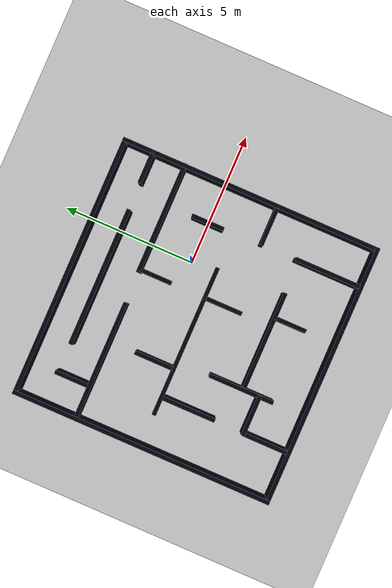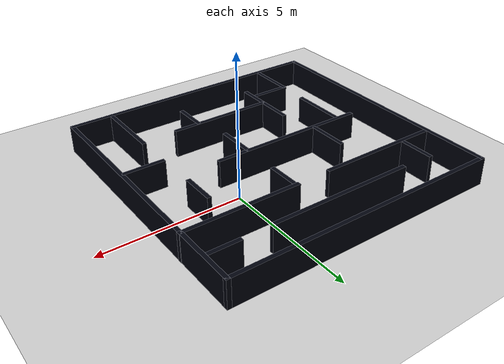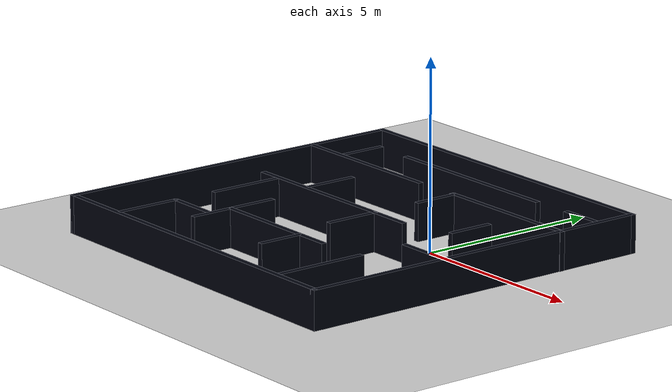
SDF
<?xml version='1.0'?>
<sdf version='1.6'>
  <world name='large'>
    <physics name='50ms' type='ignored'>
        <max_step_size>0.01</max_step_size>
        <real_time_factor>1</real_time_factor>
        <real_time_update_rate>100</real_time_update_rate>
    </physics>
    <plugin
      filename="ignition-gazebo-physics-system"
      name="gz::sim::systems::Physics">
    </plugin>
    <plugin
      filename="ignition-gazebo-user-commands-system"
      name="gz::sim::systems::UserCommands">
    </plugin>
    <plugin
      filename="ignition-gazebo-scene-broadcaster-system"
      name="gz::sim::systems::SceneBroadcaster">
    </plugin>
    <plugin
      filename="ignition-gazebo-contact-system"
      name="gz::sim::systems::Contact">
    </plugin>
    <light name='sun' type='directional'>
        <cast_shadows>1</cast_shadows>
        <pose>0 0 10 0 -0 0</pose>
        <diffuse>0.8 0.8 0.8 1</diffuse>
        <specular>0.2 0.2 0.2 1</specular>
        <attenuation>
            <range>1000</range>
            <constant>0.90000000000000002</constant>
            <linear>0.01</linear>
            <quadratic>0.001</quadratic>
        </attenuation>
        <direction>-0.5 0.1 -0.9</direction>
        <spot>
            <inner_angle>0</inner_angle>
            <outer_angle>0</outer_angle>
            <falloff>0</falloff>
        </spot>
    </light>
    <gravity>0 0 -9.8</gravity>
    <magnetic_field>6e-06 2.3e-05 -4.2e-05</magnetic_field>
    <atmosphere type='adiabatic' />
    <scene>
        <ambient>0.4 0.4 0.4 1</ambient>
        <background>0.7 0.7 0.7 1</background>
        <shadows>1</shadows>
    </scene>
    <model name='ground_plane'>
        <static>1</static>
        <link name='link'>
            <collision name='collision'>
                <geometry>
                    <plane>
                        <normal>0 0 1</normal>
                        <size>100 100</size>
                    </plane>
                </geometry>
                <surface>
                    <friction>
                        <ode />
                    </friction>
                    <bounce />
                    <contact />
                </surface>
            </collision>
            <visual name='visual'>
                <geometry>
                    <plane>
                        <normal>0 0 1</normal>
                        <size>100 100</size>
                    </plane>
                </geometry>
                <material>
                    <ambient>0.8 0.8 0.8 1</ambient>
                    <diffuse>0.8 0.8 0.8 1</diffuse>
                    <specular>0.8 0.8 0.8 1</specular>
                </material>
                <plugin name='__default__' filename='__default__' />
            </visual>
        </link>
        <plugin name='__default__' filename='__default__' />
        <pose>0 0 0 0 -0 0</pose>
    </model>

    <model name='Wall_15'>
      <link name='wall'>
        <pose>-4.19324 -4.16317 0.5 0 -0 0</pose>
        <static>true</static>
        <collision name='collision'>
          <geometry>
            <box>
              <size>1.56045 0.15 1</size>
            </box>
          </geometry>
        </collision>
        <visual name='visual'>
          <geometry>
            <box>
              <size>1.56045 0.15 1</size>
            </box>
          </geometry>
          <material>
            <ambient>0.1 0.1 0.1 1</ambient>
            <diffuse>0 0.01 0.05 1</diffuse>
            <specular>0 0.01 0.05 1</specular>
          </material>
        </visual>
      </link>
    </model>
    <model name='Wall_17'>
      <link name='wall17'>
        <pose>1.56897 -4.62224 0.5 0 0 -1.5708</pose>
        <static>true</static>
        <collision name='collision'>
          <geometry>
            <box>
              <size>2.5 0.15 1</size>
            </box>
          </geometry>
        </collision>
        <visual name='visual'>
          <geometry>
            <box>
              <size>2.5 0.15 1</size>
            </box>
          </geometry>
          <material>
            <ambient>0.1 0.1 0.1 1</ambient>
            <diffuse>0 0.01 0.05 1</diffuse>
            <specular>0 0.01 0.05 1</specular>
          </material>
        </visual>
      </link>
    </model>
    <model name='Wall_19'>
      <link name='wall'>
        <pose>2.27726 -2.04863 0.5 0 -0 3.14159</pose>
        <static>true</static>
        <collision name='collision'>
          <geometry>
            <box>
              <size>1.5 0.15 1</size>
            </box>
          </geometry>
        </collision>
        <visual name='visual'>
          <geometry>
            <box>
              <size>1.5 0.15 1</size>
            </box>
          </geometry>
          <material>
            <ambient>0.1 0.1 0.1 1</ambient>
            <diffuse>0 0.01 0.05 1</diffuse>
            <specular>0 0.01 0.05 1</specular>
          </material>
        </visual>
      </link>
    </model>
    <model name='Wall_22'>
      <link name='wall'>
        <pose>-6.81214 -1 0.5 0 0 -1.5708</pose>
        <static>true</static>
        <collision name='collision'>
          <geometry>
            <box>
              <size>10 0.15 1</size>
            </box>
          </geometry>
        </collision>
        <visual name='visual'>
          <geometry>
            <box>
              <size>10 0.15 1</size>
            </box>
          </geometry>
          <material>
            <ambient>0.1 0.1 0.1 1</ambient>
            <diffuse>0 0.01 0.05 1</diffuse>
            <specular>0 0.01 0.05 1</specular>
          </material>
        </visual>
      </link>
    </model>
    <model name='Wall_23'>
      <link name='wall'>
        <pose>-1.887143 -5.925 0.5 0 -0 0</pose>
        <static>true</static>
        <collision name='collision'>
          <geometry>
            <box>
              <size>10 0.15 1</size>
            </box>
          </geometry>
        </collision>
        <visual name='visual'>
          <geometry>
            <box>
              <size>10 0.15 1</size>
            </box>
          </geometry>
          <material>
            <ambient>0.1 0.1 0.1 1</ambient>
            <diffuse>0 0.01 0.05 1</diffuse>
            <specular>0 0.01 0.05 1</specular>
          </material>
        </visual>
      </link>
    </model>
    <model name='Wall_24'>
      <link name='wall'>
        <pose>3.03786 -1 0.5 0 0 1.5708</pose>
        <static>true</static>
        <collision name='collision'>
          <geometry>
            <box>
              <size>10 0.15 1</size>
            </box>
          </geometry>
        </collision>
        <visual name='visual'>
          <geometry>
            <box>
              <size>10 0.15 1</size>
            </box>
          </geometry>
          <material>
            <ambient>0.1 0.1 0.1 1</ambient>
            <diffuse>0 0.01 0.05 1</diffuse>
            <specular>0 0.01 0.05 1</specular>
          </material>
        </visual>
      </link>
    </model>
    <model name='Wall_25'>
      <link name='wall'>
        <pose>-1.887143 3.925 0.5 0 -0 3.14159</pose>
        <static>true</static>
        <collision name='collision'>
          <geometry>
            <box>
              <size>10 0.15 1</size>
            </box>
          </geometry>
        </collision>
        <visual name='visual'>
          <geometry>
            <box>
              <size>10 0.15 1</size>
            </box>
          </geometry>
          <material>
            <ambient>0.1 0.1 0.1 1</ambient>
            <diffuse>0 0.01 0.05 1</diffuse>
            <specular>0 0.01 0.05 1</specular>
          </material>
        </visual>
      </link>
    </model>
    <model name='Wall_28'>
      <link name='wall'>
        <pose>-4.88496 -2.01944 0.5 0 0 -1.5708</pose>
        <static>true</static>
        <collision name='collision'>
          <geometry>
            <box>
              <size>2.02744 0.15 1</size>
            </box>
          </geometry>
        </collision>
        <visual name='visual'>
          <geometry>
            <box>
              <size>2.02744 0.15 1</size>
            </box>
          </geometry>
          <material>
            <ambient>0.1 0.1 0.1 1</ambient>
            <diffuse>0 0.01 0.05 1</diffuse>
            <specular>0 0.01 0.05 1</specular>
          </material>
        </visual>
      </link>
    </model>
    <model name='Wall_30'>
      <link name='wall'>
        <pose>-4.91555 -5.012 0.5 0 0 -1.5708</pose>
        <static>true</static>
        <collision name='collision'>
          <geometry>
            <box>
              <size>1.75 0.15 1</size>
            </box>
          </geometry>
        </collision>
        <visual name='visual'>
          <geometry>
            <box>
              <size>1.75 0.15 1</size>
            </box>
          </geometry>
          <material>
            <ambient>0.1 0.1 0.1 1</ambient>
            <diffuse>0 0.01 0.05 1</diffuse>
            <specular>0 0.01 0.05 1</specular>
          </material>
        </visual>
      </link>
    </model>
    <model name='Wall_32'>
      <link name='wall'>
        <pose>-3.47225 -3.45584 0.5 0 0 -1.5708</pose>
        <static>true</static>
        <collision name='collision'>
          <geometry>
            <box>
              <size>2.47918 0.15 1</size>
            </box>
          </geometry>
        </collision>
        <visual name='visual'>
          <geometry>
            <box>
              <size>2.47918 0.15 1</size>
            </box>
          </geometry>
          <material>
            <ambient>0.1 0.1 0.1 1</ambient>
            <diffuse>0 0.01 0.05 1</diffuse>
            <specular>0 0.01 0.05 1</specular>
          </material>
        </visual>
      </link>
    </model>
    <model name='Wall_34'>
      <link name='wall'>
        <pose>-1 -1.644436 0.5 0 0 -1.5708</pose>
        <static>true</static>
        <collision name='collision'>
          <geometry>
            <box>
              <size>1.5 0.15 1</size>
            </box>
          </geometry>
        </collision>
        <visual name='visual'>
          <geometry>
            <box>
              <size>1.5 0.15 1</size>
            </box>
          </geometry>
          <material>
            <ambient>0.1 0.1 0.1 1</ambient>
            <diffuse>0 0.01 0.05 1</diffuse>
            <specular>0 0.01 0.05 1</specular>
          </material>
        </visual>
      </link>
    </model>
    <model name='Wall_36'>
      <link name='wall'>
        <pose>-4.54537 1.56955 0.5 0 -0 0</pose>
        <static>true</static>
        <collision name='collision'>
          <geometry>
            <box>
              <size>4.5 0.15 1</size>
            </box>
          </geometry>
        </collision>
        <visual name='visual'>
          <geometry>
            <box>
              <size>4.5 0.15 1</size>
            </box>
          </geometry>
          <material>
            <ambient>0.1 0.1 0.1 1</ambient>
            <diffuse>0 0.01 0.05 1</diffuse>
            <specular>0 0.01 0.05 1</specular>
          </material>
        </visual>
      </link>
    </model>
    <model name='Wall_38'>
      <link name='wall'>
        <pose>1 1.60014 0.5 0 -0 3.14159</pose>
        <static>true</static>
        <collision name='collision'>
          <geometry>
            <box>
              <size>4.25 0.15 1</size>
            </box>
          </geometry>
        </collision>
        <visual name='visual'>
          <geometry>
            <box>
              <size>4.25 0.15 1</size>
            </box>
          </geometry>
          <material>
            <ambient>0.1 0.1 0.1 1</ambient>
            <diffuse>0 0.01 0.05 1</diffuse>
            <specular>0 0.01 0.05 1</specular>
          </material>
        </visual>
      </link>
    </model>
    <model name='Wall_40'>
      <link name='wall'>
        <pose>-3.78371 -0.19 0.5 0 0 -1.5708</pose>
        <static>true</static>
        <collision name='collision'>
          <geometry>
            <box>
              <size>1.5 0.15 1</size>
            </box>
          </geometry>
        </collision>
        <visual name='visual'>
          <geometry>
            <box>
              <size>1.5 0.15 1</size>
            </box>
          </geometry>
          <material>
            <ambient>0.1 0.1 0.1 1</ambient>
            <diffuse>0 0.01 0.05 1</diffuse>
            <specular>0 0.01 0.05 1</specular>
          </material>
        </visual>
      </link>
    </model>
    <model name='Wall_41'>
      <link name='wall'>
        <pose>1.51058 0.02795 0.5 0 0 -1.5708</pose>
        <static>true</static>
        <collision name='collision'>
          <geometry>
            <box>
              <size>1.242 0.15 1</size>
            </box>
          </geometry>
        </collision>
        <visual name='visual'>
          <geometry>
            <box>
              <size>1.242 0.15 1</size>
            </box>
          </geometry>
          <material>
            <ambient>0.1 0.1 0.1 1</ambient>
            <diffuse>0 0.01 0.05 1</diffuse>
            <specular>0 0.01 0.05 1</specular>
          </material>
        </visual>
      </link>
    </model>
    <model name='Wall_42'>
      <link name='wall'>
        <pose>-1 1 0.5 0 0 -1.5708</pose>
        <static>true</static>
        <collision name='collision'>
          <geometry>
            <box>
              <size>1.25 0.15 1</size>
            </box>
          </geometry>
        </collision>
        <visual name='visual'>
          <geometry>
            <box>
              <size>1.25 0.15 1</size>
            </box>
          </geometry>
          <material>
            <ambient>0.1 0.1 0.1 1</ambient>
            <diffuse>0 0.01 0.05 1</diffuse>
            <specular>0 0.01 0.05 1</specular>
          </material>
        </visual>
      </link>
    </model>
    <model name='Wall_44'>
      <link name='wall'>
        <pose>-1.814925 2.79316 0.5 0 -0 0</pose>
        <static>true</static>
        <collision name='collision'>
          <geometry>
            <box>
              <size>5.25 0.15 1</size>
            </box>
          </geometry>
        </collision>
        <visual name='visual'>
          <geometry>
            <box>
              <size>5.25 0.15 1</size>
            </box>
          </geometry>
          <material>
            <ambient>0.1 0.1 0.1 1</ambient>
            <diffuse>0 0.01 0.05 1</diffuse>
            <specular>0 0.01 0.05 1</specular>
          </material>
        </visual>
      </link>
    </model>
    <model name='Wall_46'>
      <link name='wall'>
        <pose>-5.55794 2.27375 0.5 0 0 -1.5708</pose>
        <static>true</static>
        <collision name='collision'>
          <geometry>
            <box>
              <size>1.25 0.15 1</size>
            </box>
          </geometry>
        </collision>
        <visual name='visual'>
          <geometry>
            <box>
              <size>1.25 0.15 1</size>
            </box>
          </geometry>
          <material>
            <ambient>0.1 0.1 0.1 1</ambient>
            <diffuse>0 0.01 0.05 1</diffuse>
            <specular>0 0.01 0.05 1</specular>
          </material>
        </visual>
      </link>
    </model>
    <model name='Wall_48'>
      <link name='wall'>
        <pose>2.45607 2.82375 0.5 0 -0 0</pose>
        <static>true</static>
        <collision name='collision'>
          <geometry>
            <box>
              <size>1.25 0.15 1</size>
            </box>
          </geometry>
        </collision>
        <visual name='visual'>
          <geometry>
            <box>
              <size>1.25 0.15 1</size>
            </box>
          </geometry>
          <material>
            <ambient>0.1 0.1 0.1 1</ambient>
            <diffuse>0 0.01 0.05 1</diffuse>
            <specular>0 0.01 0.05 1</specular>
          </material>
        </visual>
      </link>
    </model>
    <model name='Wall_5'>
      <link name='wall'>
        <pose>-2.7 -0.95 0.5 0 -0 0</pose>
        <static>true</static>
        <collision name='collision'>
          <geometry>
            <box>
              <size>5.74167 0.15 1</size>
            </box>
          </geometry>
        </collision>
        <visual name='visual'>
          <geometry>
            <box>
              <size>5.74167 0.15 1</size>
            </box>
          </geometry>
          <material>
            <ambient>0.1 0.1 0.1 1</ambient>
            <diffuse>0 0.01 0.05 1</diffuse>
            <specular>0 0.01 0.05 1</specular>
          </material>
        </visual>
      </link>
    </model>
    <model name='Wall_50'>
      <link name='wall'>
        <pose>-0.66 -4.11961 0.5 0 0 -1.5708</pose>
        <static>true</static>
        <collision name='collision'>
          <geometry>
            <box>
              <size>1.25 0.15 1</size>
            </box>
          </geometry>
        </collision>
        <visual name='visual'>
          <geometry>
            <box>
              <size>1.25 0.15 1</size>
            </box>
          </geometry>
          <material>
            <ambient>0.1 0.1 0.1 1</ambient>
            <diffuse>0 0.01 0.05 1</diffuse>
            <specular>0 0.01 0.05 1</specular>
          </material>
        </visual>
      </link>
    </model>
    <model name='Wall_7'>
      <link name='wall'>
        <pose>-1.606395 -3.5294 0.5 0 -0 0</pose>
        <static>true</static>
        <collision name='collision'>
          <geometry>
            <box>
              <size>3.81839 0.15 1</size>
            </box>
          </geometry>
        </collision>
        <visual name='visual'>
          <geometry>
            <box>
              <size>3.81839 0.15 1</size>
            </box>
          </geometry>
          <material>
            <ambient>0.1 0.1 0.1 1</ambient>
            <diffuse>0 0.01 0.05 1</diffuse>
            <specular>0 0.01 0.05 1</specular>
          </material>
        </visual>
      </link>
    </model>
  </world>
</sdf>
